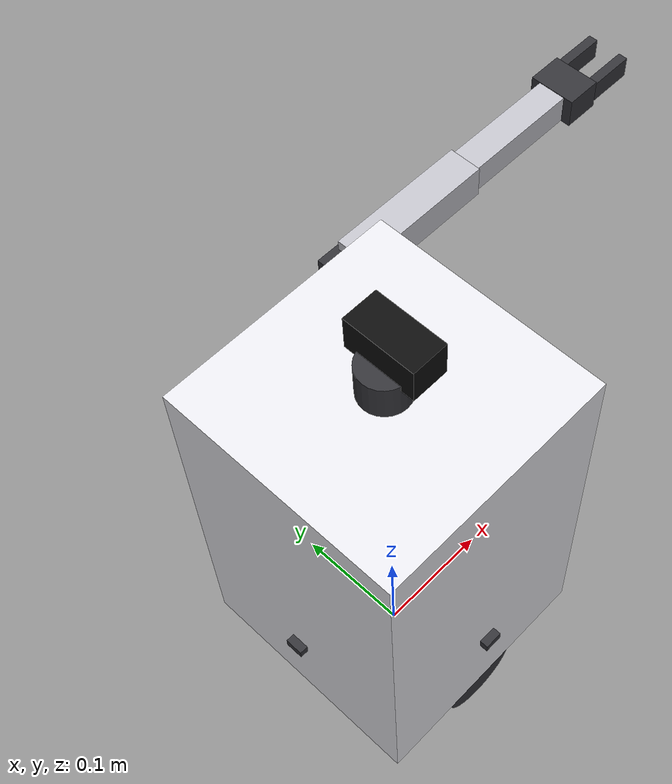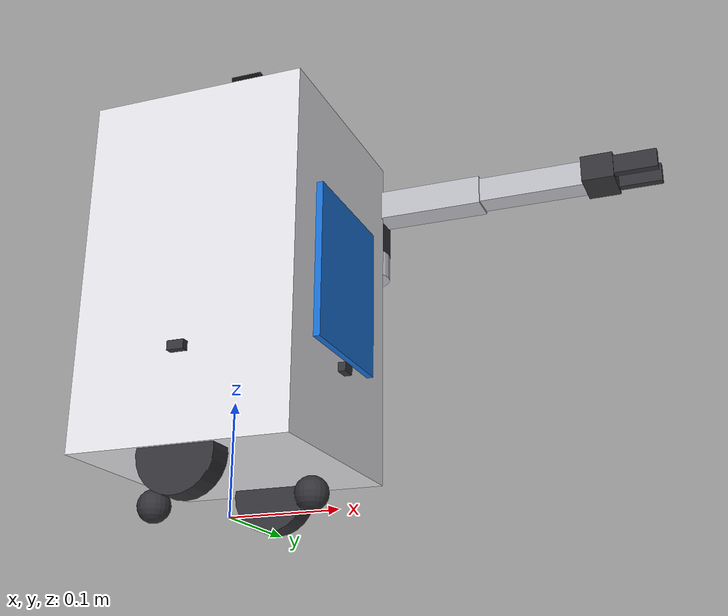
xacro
<?xml version="1.0"?>
<robot xmlns:xacro="http://www.ros.org/wiki/xacro" name="underbot">

  <!-- ================= MATERIALS ================= -->
  <material name="chassis_white">
    <color rgba="0.9 0.9 0.92 1.0"/>
  </material>
  <material name="accent_blue">
    <color rgba="0.1 0.45 0.85 1.0"/>
  </material>
  <material name="dark_gray">
    <color rgba="0.2 0.2 0.22 1.0"/>
  </material>
  <material name="aluminum">
    <color rgba="0.75 0.75 0.78 1.0"/>
  </material>
  <material name="lens_glass">
    <color rgba="0.05 0.05 0.05 1.0"/>
  </material>

  <!-- ================= BASE FOOTPRINT ================= -->
  <link name="base_footprint"/>

  <joint name="base_footprint_joint" type="fixed">
    <parent link="base_footprint"/>
    <child link="base_link"/>
    <origin xyz="0 0 0.04" rpy="0 0 0"/>
  </joint>

  <!-- ================= BASE LINK (CHASSIS) ================= -->
  <!-- 200 x 200 mm footprint, 320 mm main body height -->
  <link name="base_link">
    <visual>
      <origin xyz="0 0 0.16" rpy="0 0 0"/>
      <geometry>
        <box size="0.20 0.20 0.32"/>
      </geometry>
      <material name="chassis_white"/>
    </visual>
    <collision>
      <origin xyz="0 0 0.16" rpy="0 0 0"/>
      <geometry>
        <box size="0.20 0.20 0.32"/>
      </geometry>
    </collision>
    <inertial>
      <mass value="4.5"/>
      <origin xyz="0 0 0.12" rpy="0 0 0"/>
      <inertia ixx="0.045" ixy="0" ixz="0" iyy="0.045" iyz="0" izz="0.03"/>
    </inertial>
  </link>

  <!-- Service Door / Accent Panel -->
  <link name="accent_door_link">
    <visual>
      <origin xyz="0 0 0" rpy="0 0 0"/>
      <geometry>
        <box size="0.01 0.12 0.14"/>
      </geometry>
      <material name="accent_blue"/>
    </visual>
  </link>
  <joint name="accent_door_joint" type="fixed">
    <parent link="base_link"/>
    <child link="accent_door_link"/>
    <origin xyz="0.101 0 0.16" rpy="0 0 0"/>
  </joint>

  <!-- ================= WHEELS (XIAOMI VACUUM BASE) ================= -->
  <!-- Wheel diameter: 70mm (radius 0.035m), track width: 170mm (0.17m) -->
  <xacro:macro name="wheel" params="name y_offset">
    <link name="${name}">
      <visual>
        <origin xyz="0 0 0" rpy="${pi/2} 0 0"/>
        <geometry>
          <cylinder radius="0.035" length="0.024"/>
        </geometry>
        <material name="dark_gray"/>
      </visual>
      <collision>
        <origin xyz="0 0 0" rpy="${pi/2} 0 0"/>
        <geometry>
          <cylinder radius="0.035" length="0.024"/>
        </geometry>
      </collision>
      <inertial>
        <mass value="0.25"/>
        <inertia ixx="0.0001" ixy="0" ixz="0" iyy="0.0001" iyz="0" izz="0.00015"/>
      </inertial>
    </link>

    <joint name="${name}_joint" type="continuous">
      <parent link="base_link"/>
      <child link="${name}"/>
      <origin xyz="0 ${y_offset} -0.005" rpy="0 0 0"/>
      <axis xyz="0 1 0"/>
    </joint>
  </xacro:macro>

  <xacro:wheel name="left_wheel_link" y_offset="0.085"/>
  <xacro:wheel name="right_wheel_link" y_offset="-0.085"/>

  <!-- Passive Casters (Front & Rear) -->
  <xacro:macro name="caster" params="name x_offset">
    <link name="${name}">
      <visual>
        <geometry>
          <sphere radius="0.015"/>
        </geometry>
        <material name="dark_gray"/>
      </visual>
      <collision>
        <geometry>
          <sphere radius="0.015"/>
        </geometry>
      </collision>
      <inertial>
        <mass value="0.05"/>
        <inertia ixx="0.00001" ixy="0" ixz="0" iyy="0.00001" iyz="0" izz="0.00001"/>
      </inertial>
    </link>

    <joint name="${name}_joint" type="fixed">
      <parent link="base_link"/>
      <child link="${name}"/>
      <origin xyz="${x_offset} 0 -0.025" rpy="0 0 0"/>
    </joint>
  </xacro:macro>

  <xacro:caster name="front_caster_link" x_offset="0.075"/>
  <xacro:caster name="rear_caster_link" x_offset="-0.075"/>

  <!-- ================= SENSORS ================= -->
  <!-- 1. Body IMU (Floor 3: BNO086) -->
  <link name="imu_body_link">
    <visual>
      <geometry>
        <box size="0.02 0.02 0.005"/>
      </geometry>
      <material name="accent_blue"/>
    </visual>
  </link>
  <joint name="imu_body_joint" type="fixed">
    <parent link="base_link"/>
    <child link="imu_body_link"/>
    <origin xyz="0 0 0.18" rpy="0 0 0"/>
  </joint>

  <!-- 2. LiDAR Link (Floor 1/2) -->
  <link name="lidar_link">
    <visual>
      <origin xyz="0 0 0" rpy="0 0 0"/>
      <geometry>
        <cylinder radius="0.035" length="0.03"/>
      </geometry>
      <material name="dark_gray"/>
    </visual>
    <collision>
      <geometry>
        <cylinder radius="0.035" length="0.03"/>
      </geometry>
    </collision>
  </link>
  <joint name="lidar_joint" type="fixed">
    <parent link="base_link"/>
    <child link="lidar_link"/>
    <origin xyz="0.06 0 0.10" rpy="0 0 0"/>
  </joint>

  <!-- 3. Time-of-Flight Sensors (Floor 2: Front, Rear, Left, Right) -->
  <xacro:macro name="tof_sensor" params="name x y z yaw">
    <link name="${name}">
      <visual>
        <geometry>
          <box size="0.01 0.015 0.008"/>
        </geometry>
        <material name="dark_gray"/>
      </visual>
    </link>
    <joint name="${name}_joint" type="fixed">
      <parent link="base_link"/>
      <child link="${name}"/>
      <origin xyz="${x} ${y} ${z}" rpy="0 0 ${yaw}"/>
    </joint>
  </xacro:macro>

  <xacro:tof_sensor name="tof_front_link" x="0.102" y="0" z="0.08" yaw="0"/>
  <xacro:tof_sensor name="tof_rear_link" x="-0.102" y="0" z="0.08" yaw="${pi}"/>
  <xacro:tof_sensor name="tof_left_link" x="0" y="0.102" z="0.08" yaw="${pi/2}"/>
  <xacro:tof_sensor name="tof_right_link" x="0" y="-0.102" z="0.08" yaw="${-pi/2}"/>

  <!-- ================= 2-AXIS PAN/TILT HEAD (FLOOR 4) ================= -->
  <!-- Pan Mount (Yaw: -90° to +90°) -->
  <link name="camera_pan_link">
    <visual>
      <origin xyz="0 0 0.015" rpy="0 0 0"/>
      <geometry>
        <cylinder radius="0.02" length="0.03"/>
      </geometry>
      <material name="dark_gray"/>
    </visual>
    <inertial>
      <mass value="0.08"/>
      <inertia ixx="0.00001" ixy="0" ixz="0" iyy="0.00001" iyz="0" izz="0.00001"/>
    </inertial>
  </link>
  <joint name="camera_pan_joint" type="revolute">
    <parent link="base_link"/>
    <child link="camera_pan_link"/>
    <origin xyz="0 0 0.32" rpy="0 0 0"/>
    <axis xyz="0 0 1"/>
    <limit lower="${-pi/2}" upper="${pi/2}" effort="1.0" velocity="2.0"/>
  </joint>

  <!-- Tilt Head (Pitch: -45° to +60°) -->
  <link name="camera_tilt_link">
    <visual>
      <origin xyz="0.01 0 0.01" rpy="0 0 0"/>
      <geometry>
        <box size="0.03 0.06 0.03"/>
      </geometry>
      <material name="lens_glass"/>
    </visual>
    <collision>
      <origin xyz="0.01 0 0.01" rpy="0 0 0"/>
      <geometry>
        <box size="0.03 0.06 0.03"/>
      </geometry>
    </collision>
    <inertial>
      <mass value="0.12"/>
      <inertia ixx="0.00002" ixy="0" ixz="0" iyy="0.00002" iyz="0" izz="0.00002"/>
    </inertial>
  </link>
  <joint name="camera_tilt_joint" type="revolute">
    <parent link="camera_pan_link"/>
    <child link="camera_tilt_link"/>
    <origin xyz="0 0 0.03" rpy="0 0 0"/>
    <axis xyz="0 1 0"/>
    <limit lower="${-pi/4}" upper="${pi/3}" effort="1.0" velocity="2.0"/>
  </joint>

  <!-- Camera Optical Frame (REP 103 standard) -->
  <link name="camera_optical_frame"/>
  <joint name="camera_optical_joint" type="fixed">
    <parent link="camera_tilt_link"/>
    <child link="camera_optical_frame"/>
    <origin xyz="0.025 0 0.01" rpy="${-pi/2} 0 ${-pi/2}"/>
  </joint>

  <!-- Camera Head IMU -->
  <link name="imu_camera_link"/>
  <joint name="imu_camera_joint" type="fixed">
    <parent link="camera_tilt_link"/>
    <child link="imu_camera_link"/>
    <origin xyz="0 0 0.01" rpy="0 0 0"/>
  </joint>

  <!-- ================= 3-DOF ROBOTIC ARM + GRIPPER ================= -->
  <!-- Arm Base Mount (Side Mount on Floor 3) -->
  <link name="arm_base_link">
    <visual>
      <origin xyz="0 0 0" rpy="0 0 0"/>
      <geometry>
        <cylinder radius="0.022" length="0.025"/>
      </geometry>
      <material name="aluminum"/>
    </visual>
  </link>
  <joint name="arm_base_joint" type="fixed">
    <parent link="base_link"/>
    <child link="arm_base_link"/>
    <origin xyz="0.08 0.11 0.22" rpy="0 0 0"/>
  </joint>

  <!-- Joint 1: Shoulder Yaw (-90° to +90°) -->
  <link name="shoulder_link">
    <visual>
      <origin xyz="0 0 0.025" rpy="0 0 0"/>
      <geometry>
        <box size="0.035 0.035 0.05"/>
      </geometry>
      <material name="dark_gray"/>
    </visual>
    <collision>
      <origin xyz="0 0 0.025" rpy="0 0 0"/>
      <geometry>
        <box size="0.035 0.035 0.05"/>
      </geometry>
    </collision>
    <inertial>
      <mass value="0.18"/>
      <inertia ixx="0.0001" ixy="0" ixz="0" iyy="0.0001" iyz="0" izz="0.00008"/>
    </inertial>
  </link>
  <joint name="joint_1" type="revolute">
    <parent link="arm_base_link"/>
    <child link="shoulder_link"/>
    <origin xyz="0 0 0.015" rpy="0 0 0"/>
    <axis xyz="0 0 1"/>
    <limit lower="${-pi/2}" upper="${pi/2}" effort="3.0" velocity="2.0"/>
  </joint>

  <!-- Joint 2: Shoulder Pitch / Upper Arm (0° to 135°) -->
  <link name="upper_arm_link">
    <visual>
      <origin xyz="0.06 0 0" rpy="0 0 0"/>
      <geometry>
        <box size="0.12 0.028 0.028"/>
      </geometry>
      <material name="aluminum"/>
    </visual>
    <collision>
      <origin xyz="0.06 0 0" rpy="0 0 0"/>
      <geometry>
        <box size="0.12 0.028 0.028"/>
      </geometry>
    </collision>
    <inertial>
      <mass value="0.22"/>
      <inertia ixx="0.0001" ixy="0" ixz="0" iyy="0.0003" iyz="0" izz="0.0003"/>
    </inertial>
  </link>
  <joint name="joint_2" type="revolute">
    <parent link="shoulder_link"/>
    <child link="upper_arm_link"/>
    <origin xyz="0 0 0.045" rpy="0 0 0"/>
    <axis xyz="0 1 0"/>
    <limit lower="0" upper="${135*pi/180}" effort="4.0" velocity="2.0"/>
  </joint>

  <!-- Joint 3: Elbow Pitch / Forearm (-90° to +90°) -->
  <link name="forearm_link">
    <visual>
      <origin xyz="0.05 0 0" rpy="0 0 0"/>
      <geometry>
        <box size="0.10 0.024 0.024"/>
      </geometry>
      <material name="aluminum"/>
    </visual>
    <collision>
      <origin xyz="0.05 0 0" rpy="0 0 0"/>
      <geometry>
        <box size="0.10 0.024 0.024"/>
      </geometry>
    </collision>
    <inertial>
      <mass value="0.15"/>
      <inertia ixx="0.00005" ixy="0" ixz="0" iyy="0.00015" iyz="0" izz="0.00015"/>
    </inertial>
  </link>
  <joint name="joint_3" type="revolute">
    <parent link="upper_arm_link"/>
    <child link="forearm_link"/>
    <origin xyz="0.12 0 0" rpy="0 0 0"/>
    <axis xyz="0 1 0"/>
    <limit lower="${-pi/2}" upper="${pi/2}" effort="3.0" velocity="2.0"/>
  </joint>

  <!-- Gripper Base -->
  <link name="gripper_base_link">
    <visual>
      <origin xyz="0.015 0 0" rpy="0 0 0"/>
      <geometry>
        <box size="0.03 0.04 0.025"/>
      </geometry>
      <material name="dark_gray"/>
    </visual>
  </link>
  <joint name="gripper_base_joint" type="fixed">
    <parent link="forearm_link"/>
    <child link="gripper_base_link"/>
    <origin xyz="0.10 0 0" rpy="0 0 0"/>
  </joint>

  <!-- Gripper Fingers (Parallel jaw) -->
  <link name="gripper_left_finger">
    <visual>
      <origin xyz="0.02 0 0" rpy="0 0 0"/>
      <geometry>
        <box size="0.04 0.008 0.018"/>
      </geometry>
      <material name="dark_gray"/>
    </visual>
  </link>
  <joint name="gripper_left_joint" type="prismatic">
    <parent link="gripper_base_link"/>
    <child link="gripper_left_finger"/>
    <origin xyz="0.03 0.015 0" rpy="0 0 0"/>
    <axis xyz="0 1 0"/>
    <limit lower="0" upper="0.02" effort="10.0" velocity="0.05"/>
  </joint>

  <link name="gripper_right_finger">
    <visual>
      <origin xyz="0.02 0 0" rpy="0 0 0"/>
      <geometry>
        <box size="0.04 0.008 0.018"/>
      </geometry>
      <material name="dark_gray"/>
    </visual>
  </link>
  <joint name="gripper_right_joint" type="prismatic">
    <parent link="gripper_base_link"/>
    <child link="gripper_right_finger"/>
    <origin xyz="0.03 -0.015 0" rpy="0 0 0"/>
    <axis xyz="0 -1 0"/>
    <limit lower="0" upper="0.02" effort="10.0" velocity="0.05"/>
    <mimic joint="gripper_left_joint" multiplier="1.0" offset="0"/>
  </joint>

  <!-- Tool Center Point (TCP) / Gripper Tip Frame -->
  <link name="tcp_link"/>
  <joint name="tcp_joint" type="fixed">
    <parent link="gripper_base_link"/>
    <child link="tcp_link"/>
    <origin xyz="0.06 0 0" rpy="0 0 0"/>
  </joint>

</robot>
